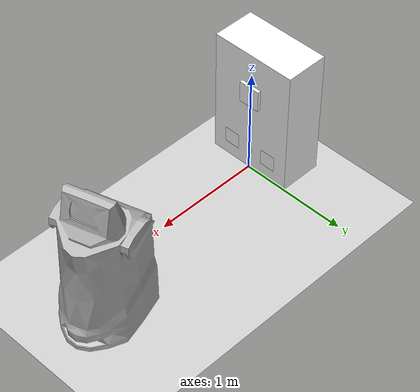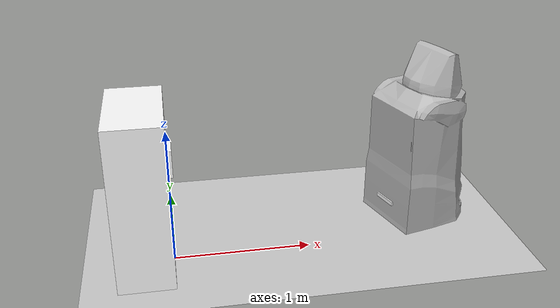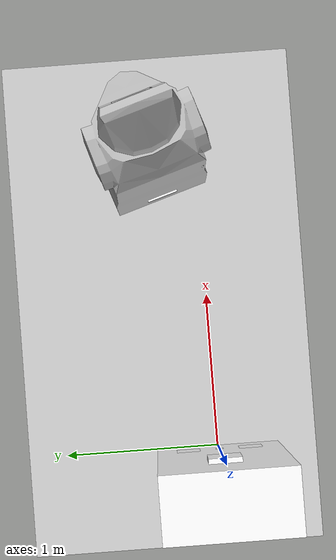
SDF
<sdf version="1.4">
  <world name="default">
    <physics type="ode">
      <max_step_size>0.002</max_step_size>
      <real_time_update_rate>4000</real_time_update_rate>
    </physics>

    <include>
      <uri>model://sun</uri>
    </include>
    <include>
      <uri>model://ground_plane</uri>
    </include>

    <light name='user_spot_light_0' type='spot'>
      <pose>0 0 2 0 -0 0</pose>
      <cast_shadows>0</cast_shadows>
      <spot>
        <inner_angle>0.6</inner_angle>
        <outer_angle>1</outer_angle>
        <falloff>1</falloff>
      </spot>
    </light>

    <include>
      <uri>model://MockCharger</uri>
      <name>charger_base1</name>
      <pose>0 0 0 0 0 0</pose>
			<static>True</static>
    </include>

    <include>
      <uri>model://MockRobot</uri>
      <name>mock_docking_robot</name>
      <!-- randomlize the robot pose -->
      <pose>2.0 0.35 0 0 0 0.3</pose>
    </include>

  </world>
</sdf>

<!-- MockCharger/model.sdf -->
<sdf version='1.6'>
  <model name='MockCharger'>
    <allow_auto_disable>0</allow_auto_disable>
    <static>0</static>

    <!-- Charger Base: Offset to make sure origin is at bottom center-->
    <link name='charger_base'>
      <pose> -0.201 0 0.6 0 0 0</pose>

      <collision name='collision'>
        <geometry>
          <box>
            <size>.4 .8 1.2</size>
          </box>
        </geometry>
      </collision>

      <visual name='visual'>
        <geometry>
          <box>
            <size>.4 .8 1.2</size>
          </box>
        </geometry>
        <material>
          <ambient>.7 .7 .5 1</ambient>
          <diffuse>1 1 1 1</diffuse>
          <specular>0.1 0.1 0.1 1</specular>
          <emissive>0 0 0 0</emissive>
        </material>
      </visual>
    </link>

    <!-- Experimental Charging station contact, For ChargingstationPlugin -->
    <link name="charger_contact">
      <pose> 0 0 0.8 0 0 0</pose>

      <light name='charger_led' type='spot'>
        <pose>0.1 0 0.7 0 0 0</pose>
        <cast_shadows>0</cast_shadows>
        <spot>
          <inner_angle>0.6</inner_angle>
          <outer_angle>1</outer_angle>
          <falloff>1</falloff>
        </spot>
      </light>

      <collision name='charger_collision'>
        <max_contacts>2</max_contacts>
        <geometry>
          <box>
            <size>.06 .2 .2</size>
          </box>
        </geometry>
      </collision>

      <visual name='visual'>
        <geometry>
          <box>
            <size>.06 .2 .2</size>
          </box>
        </geometry>
        <material>
          <ambient>.7 0 0 1</ambient>
          <diffuse>1 1 1 1</diffuse>
          <specular>0.1 0.1 0.1 1</specular>
          <emissive>0 0 0 0</emissive>
        </material>
      </visual>

      <!-- Publish contact info of the contact 'Box' to gz transport topic -->
      <sensor name="charger_contactsensor" type="contact">
        <always_on>true</always_on>
        <update_rate>0.5</update_rate>
        <contact>
          <collision>charger_collision</collision>
        </contact>
        <plugin name="charging_station_plugin" filename="libContactPlugin.so"/>
      </sensor>
    </link>

    <!-- Custom charging_station_plugin -->
    <!-- features: retrieve contact info, light indicator, trigger ros srv server -->
    <plugin name='charging_station_plugin' filename='libChargingStationPlugin.so'>
      <enable>true</enable>
      <light>
        <id>charger_contact/charger_led</id>
        <duration>1</duration>
        <interval>1</interval>
        <color>1 0.1 0</color>
      </light>
      <target_color>0 1 0</target_color>
      <reset_timeout>15</reset_timeout>
      <target_collision>mock_docking_robot::body::collision</target_collision>
      <contact_topic>
        /gazebo/default/charger_base1/charger_contact/charger_contactsensor/contacts
      </contact_topic>
    </plugin>

    <!-- Offset -20cm from centre-->
    <include>
      <name>left_aruco_tag</name>
      <uri>model://Fiducial10</uri>
      <pose> 0 -0.2 0.2 0 -1.57 0.0</pose>
      <static>true</static>
    </include>

    <!-- located at centre-->
    <include>
      <name>centre_aruco_tag</name>
      <uri>model://Fiducial20</uri>
      <pose> 0 0 0.2 -0 -1.57 0</pose>
      <static>true</static>
    </include>

    <!-- Offset +20cm from centre-->
    <include>
      <name>right_aruco_tag</name>
      <uri>model://Fiducial11</uri>
      <pose> 0 0.2 0.2 -0 -1.57 0</pose>
      <static>true</static>
    </include>

    <joint name="aruco_tag_joint1" type="fixed">
      <parent>charger_base</parent>
      <child>left_aruco_tag::marker</child>
    </joint>

    <joint name="aruco_tag_joint2" type="fixed">
      <parent>charger_base</parent>
      <child>centre_aruco_tag::marker</child>
    </joint>

    <joint name="aruco_tag_joint3" type="fixed">
      <parent>charger_base</parent>
      <child>right_aruco_tag::marker</child>
    </joint>

    <joint name="charger_contact_joint" type="fixed">
      <parent>charger_base</parent>
      <child>charger_contact</child>
    </joint>
  </model>
</sdf>

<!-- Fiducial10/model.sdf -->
<sdf version='1.6'>
  <model name='Fiducial10'>

    <link name='marker'>
      <pose frame=''>0 0 0 0 0 3.14</pose>
      <visual name='visual'>
        <geometry>
          <box>
            <size>0.15 0.15 1e-5</size>
          </box>
        </geometry>
        <material>
          <script>
            <uri>model://Fiducial10/materials/scripts</uri>
            <uri>model://Fiducial10/materials/textures</uri>
            <name>Fiducial10/Marker</name>
          </script>
          <ambient>1 1 1 1</ambient>
          <diffuse>1 1 1 1</diffuse>
          <specular>0 0 0 1</specular>
          <emissive>1 1 1 0</emissive>
          <shader type='vertex'>
            <normal_map>__default__</normal_map>
          </shader>
        </material>
        <pose frame=''>0 0 0 0 -0 0</pose>
        <cast_shadows>1</cast_shadows>
        <transparency>0</transparency>
      </visual>
    </link>

    <static>1</static>
    <allow_auto_disable>1</allow_auto_disable>

  </model>
</sdf>

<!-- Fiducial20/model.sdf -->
<sdf version='1.6'>
  <model name='Fiducial20'>

    <link name='marker'>
      <pose frame=''>0 0 0 0 0 3.14</pose>
      <visual name='visual'>
        <geometry>
          <box>
            <size>0.05 0.05 1e-5</size>
          </box>
        </geometry>
        <material>
          <script>
            <uri>model://Fiducial20/materials/scripts</uri>
            <uri>model://Fiducial20/materials/textures</uri>
            <name>Fiducial20/Marker</name>
          </script>
          <ambient>1 1 1 1</ambient>
          <diffuse>1 1 1 1</diffuse>
          <specular>0 0 0 1</specular>
          <emissive>1 1 1 0</emissive>
          <shader type='vertex'>
            <normal_map>__default__</normal_map>
          </shader>
        </material>
        <pose frame=''>0 0 0 0 -0 0</pose>
        <cast_shadows>1</cast_shadows>
        <transparency>0</transparency>
      </visual>
    </link>

    <static>1</static>
    <allow_auto_disable>1</allow_auto_disable>

  </model>
</sdf>

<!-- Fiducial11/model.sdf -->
<sdf version='1.6'>
  <model name='Fiducial11'>

    <link name='marker'>
      <pose frame=''>0 0 0 0 0 3.14</pose>
      <visual name='visual'>
        <geometry>
          <box>
            <size>0.15 0.15 1e-5</size>
          </box>
        </geometry>
        <material>
          <script>
            <uri>model://Fiducial11/materials/scripts</uri>
            <uri>model://Fiducial11/materials/textures</uri>
            <name>Fiducial11/Marker</name>
          </script>
          <ambient>1 1 1 1</ambient>
          <diffuse>1 1 1 1</diffuse>
          <specular>0 0 0 1</specular>
          <emissive>1 1 1 0</emissive>
          <shader type='vertex'>
            <normal_map>__default__</normal_map>
          </shader>
        </material>
        <pose frame=''>0 0 0 0 -0 0</pose>
        <cast_shadows>1</cast_shadows>
        <transparency>0</transparency>
      </visual>
    </link>

    <static>1</static>
    <allow_auto_disable>1</allow_auto_disable>

  </model>
</sdf>

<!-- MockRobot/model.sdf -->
<sdf version="1.6">
  <model name="MockRobot">

    <plugin name="mock_robot_diff_controller" filename="libgazebo_ros_diff_drive.so">
      <robotNamespace>/</robotNamespace>
      <always_on>true</always_on>
      <!-- Update rate -->
      <updateRate>10.0</updateRate>
      <!-- wheels -->
      <leftJoint>joint_tire_left</leftJoint>
      <rightJoint>joint_tire_right</rightJoint>
      <!-- kinematics -->
      <wheelSeparation>0.42</wheelSeparation>
      <wheelDiameter>1.22</wheelDiameter>
      <!-- limits -->
      <wheelTorque>150</wheelTorque>
      <wheelAcceleration>0.5</wheelAcceleration>
      <!-- output -->
      <publishOdom>true</publishOdom>
      <publishWheelTF>false</publishWheelTF>
      <odometryFrame>odom</odometryFrame>
      <publishWheelTF>chassis</publishWheelTF>
    </plugin>

    <!-- Camera -->
    <link name="camera_link">
      <pose> -0.35 0 .2 0 0 3.14</pose>
      <inertial>
        <mass>0.1</mass>
        <inertia>
          <ixx>.10</ixx>
          <iyy>.10</iyy>
          <izz>.30</izz>
        </inertia>
      </inertial>
      <collision name='collision'>
        <geometry>
          <box>
            <size>0.03 0.2 0.03</size>
          </box>
        </geometry>
      </collision>

      <visual name='visual'>
        <geometry>
          <box>
            <size>0.03 0.2 0.03</size>
          </box>
        </geometry>

        <material>
          <ambient>1 0 0 1</ambient>
          <diffuse>1 1 1 1</diffuse>
          <specular>0.1 0.1 0.1 1</specular>
          <emissive>0 0 0 0</emissive>
        </material>
      </visual>

      <!-- camera plugin -->
      <!-- refered to realsense rgb camera profile -->
      <sensor type="camera" name="camera1">
        <update_rate>10.0</update_rate>
        <camera name="head">
          <horizontal_fov>1.204</horizontal_fov>
          <image>
              <width>711</width>
              <height>400</height>
            <format>R8G8B8</format>
          </image>
          <clip>
            <near>0.02</near>
            <far>300</far>
          </clip>
          <noise>
            <type>gaussian</type>
            <!-- Noise is sampled independently per pixel on each frame.
                That pixel's noise value is added to each of its color
                channels, which at that point lie in the range [0,1]. -->
            <mean>0.0</mean>
            <stddev>0.02</stddev>
          </noise>
        </camera>
        <plugin name="camera_controller" filename="libgazebo_ros_camera.so">
          <alwaysOn>true</alwaysOn>
          <updateRate>0.0</updateRate>
          <cameraName>/camera/color</cameraName>
          <imageTopicName>image_raw</imageTopicName>
          <cameraInfoTopicName>camera_info</cameraInfoTopicName>
          <frameName>camera_link</frameName>
          <hackBaseline>0.07</hackBaseline>
          <distortionK1>0.0</distortionK1>
          <distortionK2>0.0</distortionK2>
          <distortionK3>0.0</distortionK3>
          <distortionT1>0.0</distortionT1>
          <distortionT2>0.0</distortionT2>
        </plugin>
      </sensor>
    </link>

    <link name="body">
      <pose>0 0 0 0 0 0</pose>

      <inertial>
        <pose>0 0 0.693 0 0 0</pose>
        <mass>170</mass>
        <inertia>
          <ixx>34.6605</ixx>
          <iyy>32.8369</iyy>
          <izz>13.0691</izz>
        </inertia>
      </inertial>

      <collision name="collision">
        <pose>0 0 0.7 0 0 0</pose>
        <geometry>
          <box>
            <size>0.7 0.7 1.4</size>
          </box>
        </geometry>
        <surface>
          <friction>
            <torsional>
              <coefficient>0.0</coefficient>
            </torsional>
            <ode>
              <mu>0.0</mu>
              <mu2>0.0</mu2>
            </ode>
            <bullet>
              <friction>0.0</friction>
              <friction2>0.0</friction2>
              <rolling_friction>0.0</rolling_friction>
            </bullet>
          </friction>
        </surface>
      </collision>

      <visual name="visual">
        <geometry>
          <mesh><uri>model://MockRobot/meshes/MockRobot.obj</uri></mesh>
        </geometry>
      </visual>
      <visual name="front_wheel_left">
      <pose>.17 -.21 .03 0 0 0</pose>
        <geometry>
          <mesh><uri>model://MockRobot/meshes/SmallWheel.obj</uri></mesh>
        </geometry>
      </visual>
      <visual name="back_wheel_left">
      <pose>-.24 -.21 .03 0 0 0</pose>
        <geometry>
          <mesh><uri>model://MockRobot/meshes/SmallWheel.obj</uri></mesh>
        </geometry>
      </visual>
      <visual name="front_wheel_right">
      <pose>.17 .21 .03 0 0 0</pose>
        <geometry>
          <mesh><uri>model://MockRobot/meshes/SmallWheel.obj</uri></mesh>
        </geometry>
      </visual>
      <visual name="back_wheel_right">
      <pose>-.24 .21 .03 0 0 0</pose>
        <geometry>
          <mesh><uri>model://MockRobot/meshes/SmallWheel.obj</uri></mesh>
        </geometry>
      </visual>
    </link>

    <link name="suspension_tire_left">
      <!-- This is a dummy link that's used to connect a suspension (prismatic
           joint) to the tire axis (revolute joint) -->
      <pose>0 .21 .06 0 0 0</pose>
      <inertial>
        <mass>1.00</mass>
        <inertia>
          <ixx>1.00</ixx>
          <iyy>1.00</iyy>
          <izz>1.00</izz>
        </inertia>
      </inertial>
    </link>

    <joint name="joint_suspension_tire_left" type="prismatic">
      <parent>body</parent>
      <child>suspension_tire_left</child>
      <axis>
        <xyz>0 0 1</xyz>
        <dynamics>
          <damping>500</damping>
          <spring_reference>-0.05</spring_reference>
          <spring_stiffness>2000</spring_stiffness>
        </dynamics>
      </axis>
      <physics>
        <ode>
          <implicit_spring_damper>true</implicit_spring_damper>
        </ode>
      </physics>
    </joint>

    <link name="tire_left">
      <pose>0 .21 .06 0 0 0</pose>
      <inertial>
        <pose>0 0 0 0 0 0</pose>
        <mass>5.0</mass>
        <inertia>
          <ixx>0.757897446874</ixx>
          <iyy>1.302975553365</iyy>
          <izz>0.757897446874</izz>
        </inertia>
      </inertial>
      <visual name="fat_wheel_left">
        <geometry>
          <mesh><uri>model://MockRobot/meshes/FatWheel.obj</uri></mesh>
        </geometry>
      </visual>
      <collision name="tire_left">
        <geometry>
          <sphere><radius>0.06137</radius></sphere>
        </geometry>
        <surface>
          <contact>
            <ode>
              <kp>10000000.0</kp>
              <kd>1.0</kd>
            </ode>
          </contact>
        </surface>
      </collision>
    </link>

    <joint name="joint_tire_left" type="revolute">
      <parent>suspension_tire_left</parent>
      <child>tire_left</child>
      <axis>
        <xyz>0 1 0</xyz>
      </axis>
    </joint>

    <link name="suspension_tire_right">
      <!-- This is a dummy link that's used to connect a suspension (prismatic
           joint) to the tire axis (revolute joint) -->
      <pose>0 -.21 .06 0 0 0</pose>
      <inertial>
        <mass>1.00</mass>
        <inertia>
          <ixx>1.00</ixx>
          <iyy>1.00</iyy>
          <izz>1.00</izz>
        </inertia>
      </inertial>
    </link>

    <joint name="joint_suspension_tire_right" type="prismatic">
      <parent>body</parent>
      <child>suspension_tire_right</child>
      <axis>
        <xyz>0 0 1</xyz>
        <dynamics>
          <damping>500</damping>
          <spring_reference>-0.05</spring_reference>
          <spring_stiffness>2000</spring_stiffness>
        </dynamics>
      </axis>
      <physics>
        <ode>
          <implicit_spring_damper>true</implicit_spring_damper>
        </ode>
      </physics>
    </joint>

    <link name="tire_right">
      <pose>0 -.21 .06 0 0 0</pose>
      <inertial>
        <pose>0 0 0 0 0 0</pose>
        <mass>5.0</mass>
        <inertia>
          <ixx>0.757897446874</ixx>
          <iyy>1.302975553365</iyy>
          <izz>0.757897446874</izz>
        </inertia>
      </inertial>
      <visual name="fat_wheel_right">
        <geometry>
          <mesh><uri>model://MockRobot/meshes/FatWheel.obj</uri></mesh>
        </geometry>
      </visual>
      <collision name="tire_right">
        <geometry>
          <sphere><radius>0.06137</radius></sphere>
        </geometry>
        <surface>
          <contact>
            <ode>
              <kp>10000000.0</kp>
              <kd>1.0</kd>
            </ode>
          </contact>
        </surface>
      </collision>
    </link>

    <joint name="joint_tire_right" type="revolute">
      <parent>suspension_tire_right</parent>
      <child>tire_right</child>
      <axis>
        <xyz>0 1 0</xyz>
      </axis>
    </joint>

    <joint name="camera_joint" type="fixed">
      <parent>body</parent>
      <child>camera_link</child>
      <axis>
        <xyz>0 0 2</xyz>
      </axis>
    </joint>

  </model>
</sdf>
